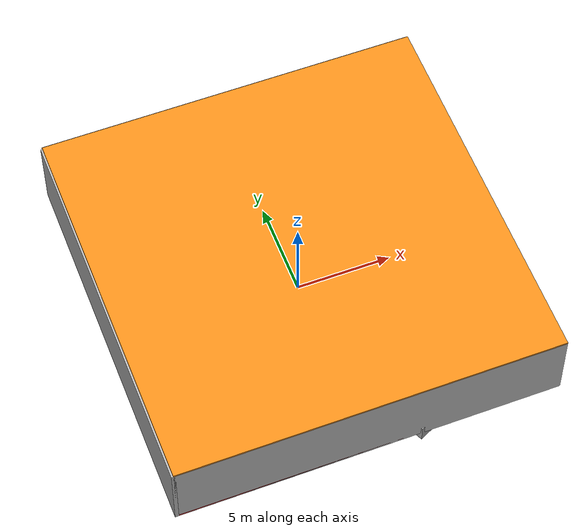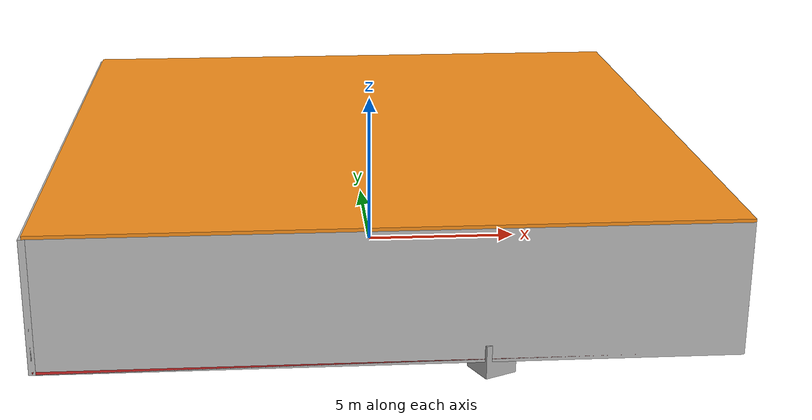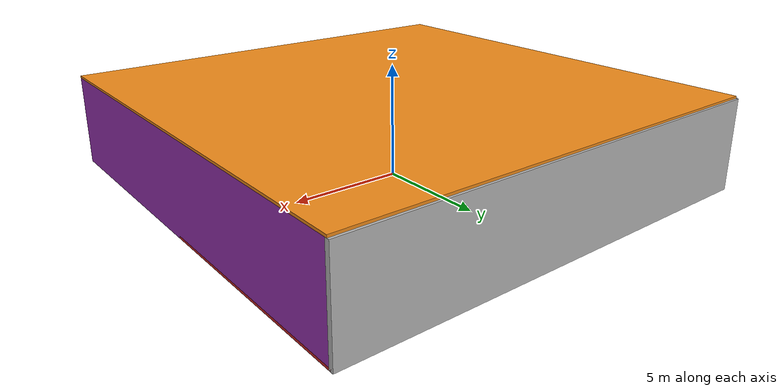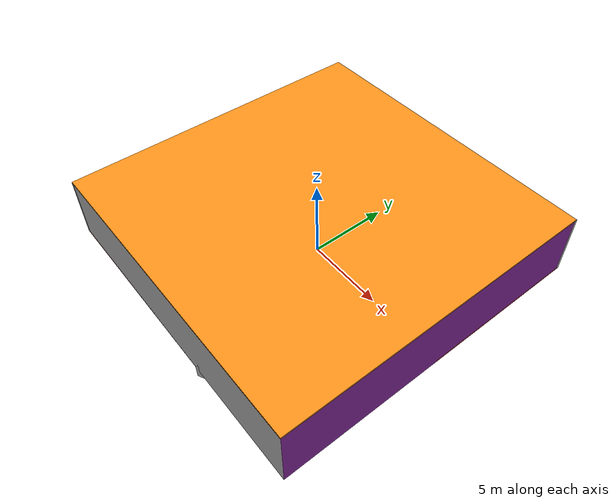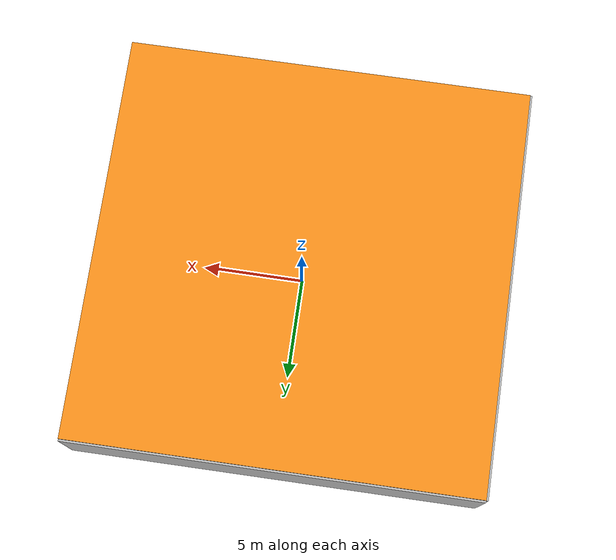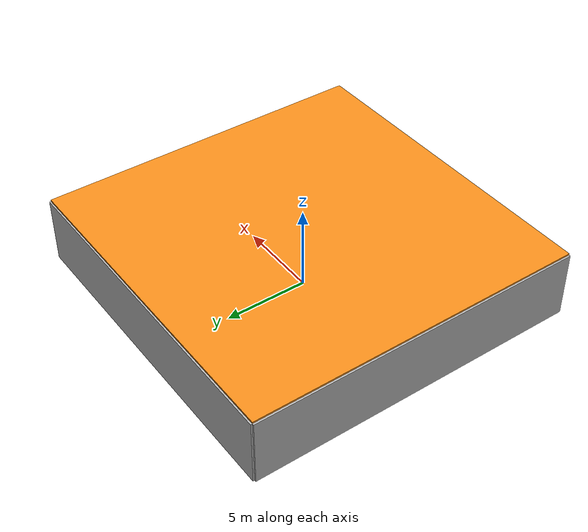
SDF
<sdf version="1.4">
 <world name="default">
  <physics type="ode">
   <max_step_size>0.001</max_step_size>
   <real_time_factor>1</real_time_factor>
   <real_time_update_rate>1000</real_time_update_rate>
   <gravity>0 0 -9.8</gravity>
  </physics>
  <scene><ambient>0.4 0.4 0.4 1</ambient><background>0.7 0.7 0.7 1</background><shadows>1</shadows></scene>
  <model name="Surrounding">
   <static>1</static>
   <link name="Ceiling">
    <collision name="Ceiling_Collision"><geometry><box><size>20 20 0.1</size></box></geometry></collision>
    <visual name="Ceiling_Visual">
     <geometry><box><size>20 20 0.1</size></box></geometry>
     <material>
      <script><uri>file://media/materials/scripts/gazebo.material</uri><name>Gazebo/Orange</name></script>
     </material>
    </visual>
    <pose>0 0 4.05 0 0 0</pose>
   </link>
   <link name="Wall_South">
    <collision name="Wall_South_Collision">
     <geometry><box><size>20 0 4</size></box></geometry>
     <pose>0 0 2 0 -0 0</pose>
    </collision>
    <visual name="Wall_South_Visual">
     <pose>0 0 2 0 -0 0</pose>
     <geometry><box><size>20 0 4</size></box></geometry>
     <material>
      <script><uri>file://media/materials/scripts/gazebo.material</uri><name>Gazebo/Pioneer2Body</name></script>
     </material>
    </visual>
    <velocity_decay><linear>0</linear><angular>0</angular></velocity_decay>
    <pose>0 -10 0 0 -0 0</pose>
   </link>
   <link name="Wall_East">
    <collision name="Wall_21_Collision">
     <geometry><box><size>20 0 4</size></box></geometry>
     <pose>0 0 2 0 -0 0</pose>
    </collision>
    <visual name="Wall_21_Visual">
     <pose>0 0 2 0 -0 0</pose>
     <geometry><box><size>20 0 4</size></box></geometry>
     <material>
      <script><uri>file://media/materials/scripts/gazebo.material</uri><name>Gazebo/Purple</name></script>
     </material>
    </visual>
    <velocity_decay><linear>0</linear><angular>0</angular></velocity_decay>
    <pose>10 0 0 0 -0 1.5708</pose>
   </link>
   <link name="Wall_North">
    <collision name="Wall_22_Collision">
     <geometry><box><size>20 0.2 4</size></box></geometry>
     <pose>0 0 2 0 -0 0</pose>
    </collision>
    <visual name="Wall_22_Visual">
     <pose>0 0 2 0 -0 0</pose>
     <geometry><box><size>20 0.2 4</size></box></geometry>
     <material>
      <script><uri>file://media/materials/scripts/gazebo.material</uri><name>Gazebo/PioneerBody</name></script>
     </material>
    </visual>
    <velocity_decay><linear>0</linear><angular>0</angular></velocity_decay>
    <pose>0 10 0 0 -0 0</pose>
   </link>
   <link name="Wall_West">
    <collision name="Wall_23_Collision">
     <geometry><box><size>20 0.2 4</size></box></geometry>
     <pose>0 0 2 0 -0 0</pose>
    </collision>
    <visual name="Wall_23_Visual">
     <pose>0 0 2 0 -0 0</pose>
     <geometry><box><size>20 0.2 4</size></box></geometry>
     <material>
      <script><uri>file://media/materials/scripts/gazebo.material</uri><name>Gazebo/JointAnchor</name></script>
     </material>
    </visual>
    <velocity_decay><linear>0</linear><angular>0</angular></velocity_decay>
    <pose>-10 0 0 0 0 -1.5708</pose>
   </link>
   <link name="Ground_link">
    <collision name="collision">
     <pose>0 0 .05 0 -0 0</pose>
     <geometry><box><size>20 20 0.1</size></box></geometry>
    </collision>
    <visual name="visual">
     <pose>0 0 .05 0 -0 0</pose>
     <geometry><box><size>20 20 0.1</size></box></geometry>
     <material>
      <script><uri>file://media/materials/scripts/gazebo.material</uri><name>Gazebo/RedGlow</name></script>
     </material>
    </visual>
   </link>
   <static>1</static>
  </model>
  <spherical_coordinates>
   <surface_model>EARTH_WGS84</surface_model>
   <latitude_deg>0</latitude_deg>
   <longitude_deg>0</longitude_deg>
   <elevation>0</elevation>
   <heading_deg>0</heading_deg>
  </spherical_coordinates>
  <light name="lightball_0" type="diffuse">
   <diffuse>0.8 0.8 0.8 1</diffuse>
   <specular>0.2 0.2 0.2 1</specular>
   <attenuation>
    <range>100</range>
    <constant>0.7</constant>
    <linear>0.01</linear>
    <quadratic>0.001</quadratic>
   </attenuation>
   <direction>-0.5 0.1 -0.9</direction>
   <pose>2.9402626712 9.53534186111 1.30081559365 0 0 0</pose>
  </light>
  <light name="lightball_1" type="diffuse">
   <diffuse>0.8 0.8 0.8 1</diffuse>
   <specular>0.2 0.2 0.2 1</specular>
   <attenuation>
    <range>100</range>
    <constant>0.7</constant>
    <linear>0.01</linear>
    <quadratic>0.001</quadratic>
   </attenuation>
   <direction>-0.5 0.1 -0.9</direction>
   <pose>-5.82374350273 -4.50841577881 0.818129888455 0 0 0</pose>
  </light>
  <include>
   <uri>model://robocup_3Dsim_goal</uri>
   <pose>-7.12855886226 -1.16968852994 0 0 0 0.511540079342</pose>
  </include>
  <include><uri>model://cabinet</uri><pose>-4.18497685215 -8.06125404533 0 0 0 0.968698936654</pose></include>
  <include>
   <uri>model://textured_shapes</uri>
   <pose>-2.09314530814 1.19774081581 0 0 0 1.74229251576</pose>
  </include>
  <include><uri>model://table</uri><pose>-1.12990533967 7.40809889307 0 0 0 1.48110526675</pose></include>
  <include>
   <uri>model://textured_shapes</uri>
   <pose>2.21107910913 -8.05321976119 0 0 0 0.435680132757</pose>
  </include>
  <include>
   <uri>model://robocup_3Dsim_goal</uri>
   <pose>1.01043202302 -1.52201526845 0 0 0 2.88952037476</pose>
  </include>
  <include>
   <uri>model://construction_cone</uri>
   <pose>4.04807999931 0.905501902153 0 0 0 1.31464968332</pose>
  </include>
  <include>
   <uri>model://textured_shapes</uri>
   <pose>4.50015424952 7.3765127322 0 0 0 0.201557840684</pose>
  </include>
 </world>
</sdf>

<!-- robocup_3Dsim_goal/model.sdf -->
<sdf version="1.5">
  <model name="robocup_3d_goal">
    <static>true</static>
    <link name="left_post">
      <pose>0 1.05 0.45 0 0 0</pose>
      <collision name="collision">
        <geometry>
          <cylinder>
            <radius>0.05</radius>
            <length>0.9</length>
          </cylinder>
        </geometry>
      </collision>
      <visual name="visual">
        <geometry>
          <cylinder>
            <radius>0.05</radius>
            <length>0.9</length>
          </cylinder>
        </geometry>
        <material>
          <script>
            <uri>file://media/materials/scripts/gazebo.material</uri>
            <name>Gazebo/ZincYellow</name>
          </script>
        </material>
      </visual>
    </link>
    <link name="left_support_horiz_lower">
      <pose>0.30 1.05 0.01 0 0 0</pose>
      <collision name="collision">
        <geometry>
          <box>
            <size>0.50 0.02 0.02</size>
          </box>
        </geometry>
      </collision>
      <visual name="visual">
        <geometry>
          <box>
            <size>0.50 0.02 0.02</size>
          </box>
        </geometry>
        <material>
          <script>
            <uri>file://media/materials/scripts/gazebo.material</uri>
            <name>Gazebo/White</name>
          </script>
        </material>
      </visual>
    </link>
    <link name="left_support_horiz_upper">
      <pose>0.30 1.05 0.79 0 0 0</pose>
      <collision name="collision">
        <geometry>
          <box>
            <size>0.50 0.02 0.02</size>
          </box>
        </geometry>
      </collision>
      <visual name="visual">
        <geometry>
          <box>
            <size>0.50 0.02 0.02</size>
          </box>
        </geometry>
        <material>
          <script>
            <uri>file://media/materials/scripts/gazebo.material</uri>
            <name>Gazebo/White</name>
          </script>
        </material>
      </visual>
    </link>
    <link name="left_support_vertical">
      <pose>0.56 1.05 0.4 0 1.5708 0</pose>
      <collision name="collision">
        <geometry>
          <box>
            <size>0.80 0.02 0.02</size>
          </box>
        </geometry>
      </collision>
      <visual name="visual">
        <geometry>
          <box>
            <size>0.80 0.02 0.02</size>
          </box>
        </geometry>
        <material>
          <script>
            <uri>file://media/materials/scripts/gazebo.material</uri>
            <name>Gazebo/White</name>
          </script>
        </material>
      </visual>
    </link>
    <link name="right_support_horiz_lower">
      <pose>0.30 -1.05 0.01 0 0 0</pose>
      <collision name="collision">
        <geometry>
          <box>
            <size>0.50 0.02 0.02</size>
          </box>
        </geometry>
      </collision>
      <visual name="visual">
        <geometry>
          <box>
            <size>0.50 0.02 0.02</size>
          </box>
        </geometry>
        <material>
          <script>
            <uri>file://media/materials/scripts/gazebo.material</uri>
            <name>Gazebo/White</name>
          </script>
        </material>
      </visual>
    </link>
    <link name="right_support_horiz_upper">
      <pose>0.30 -1.05 0.79 0 0 0</pose>
      <collision name="collision">
        <geometry>
          <box>
            <size>0.50 0.02 0.02</size>
          </box>
        </geometry>
      </collision>
      <visual name="visual">
        <geometry>
          <box>
            <size>0.50 0.02 0.02</size>
          </box>
        </geometry>
        <material>
          <script>
            <uri>file://media/materials/scripts/gazebo.material</uri>
            <name>Gazebo/White</name>
          </script>
        </material>
      </visual>
    </link>
    <link name="right_support_vertical">
      <pose>0.56 -1.05 0.4 0 1.5708 0</pose>
      <collision name="collision">
        <geometry>
          <box>
            <size>0.80 0.02 0.02</size>
          </box>
        </geometry>
      </collision>
      <visual name="visual">
        <geometry>
          <box>
            <size>0.80 0.02 0.02</size>
          </box>
        </geometry>
        <material>
          <script>
            <uri>file://media/materials/scripts/gazebo.material</uri>
            <name>Gazebo/White</name>
          </script>
        </material>
      </visual>
    </link>
    <link name="center_support_horiz_lower">
      <pose>0.56 0 0.01 0 1.5708 0</pose>
      <collision name="collision">
        <geometry>
          <box>
            <size>0.02 2.08 0.02</size>
          </box>
        </geometry>
      </collision>
      <visual name="visual">
        <geometry>
          <box>
            <size>0.02 2.08 0.02</size>
          </box>
        </geometry>
        <material>
          <script>
            <uri>file://media/materials/scripts/gazebo.material</uri>
            <name>Gazebo/White</name>
          </script>
        </material>
      </visual>
    </link>
    <link name="center_support_horiz_upper">
      <pose>0.56 0 0.79 0 1.5708 0</pose>
      <collision name="collision">
        <geometry>
          <box>
            <size>0.02 2.08 0.02</size>
          </box>
        </geometry>
      </collision>
      <visual name="visual">
        <geometry>
          <box>
            <size>0.02 2.08 0.02</size>
          </box>
        </geometry>
        <material>
          <script>
            <uri>file://media/materials/scripts/gazebo.material</uri>
            <name>Gazebo/White</name>
          </script>
        </material>
      </visual>
    </link>
    <link name="right_post">
      <pose>0 -1.05 0.45 0 0 0</pose>
      <collision name="collision">
        <geometry>
          <cylinder>
            <radius>0.05</radius>
            <length>0.9</length>
          </cylinder>
        </geometry>
      </collision>
      <visual name="visual">
        <geometry>
          <cylinder>
            <radius>0.05</radius>
            <length>0.9</length>
          </cylinder>
        </geometry>
        <material>
          <script>
            <uri>file://media/materials/scripts/gazebo.material</uri>
            <name>Gazebo/ZincYellow</name>
          </script>
        </material>
      </visual>
    </link>
    <link name="crossbar">
      <pose>0 0 0.85 1.57 1.57 0</pose>
      <collision name="collision">
        <geometry>
          <cylinder>
            <radius>0.05</radius>
            <length>2.0</length>
          </cylinder>
        </geometry>
      </collision>
      <visual name="visual">
        <geometry>
          <cylinder>
            <radius>0.05</radius>
            <length>2.0</length>
          </cylinder>
        </geometry>
        <material>
          <script>
            <uri>file://media/materials/scripts/gazebo.material</uri>
            <name>Gazebo/ZincYellow</name>
          </script>
        </material>
      </visual>
    </link>
    <link name="center_net">
      <pose>0.56 0 0.40 0 0 0</pose>
      <collision name="collision">
        <geometry>
          <box>
            <size>0.01 2.1 0.80</size>
          </box>
        </geometry>
      </collision>
      <visual name="visual">
        <geometry>
          <box>
            <size>0.01 2.1 0.80</size>
          </box>
        </geometry>
        <material>
          <script>
            <uri>model://../model_source/models/robocup09_spl_field/materials/scripts/</uri>
            <uri>model://../model_source/models/robocup09_spl_field/materials/textures/</uri>
            <name>RoboCup/Net</name>
          </script>
        </material>
      </visual>
    </link>
    <link name="left_net">
      <pose>0.30 1.05 0.40 0 0 0</pose>
      <collision name="collision">
        <geometry>
          <box>
            <size>0.50 0.01 0.76</size>
          </box>
        </geometry>
      </collision>
      <visual name="visual">
        <geometry>
          <box>
            <size>0.50 0.01 0.76</size>
          </box>
        </geometry>
        <material>
          <script>
            <uri>model://../model_source/models/robocup09_spl_field/materials/scripts/</uri>
            <uri>model://../model_source/models/robocup09_spl_field/materials/textures/</uri>
            <name>RoboCup/Net</name>
          </script>
        </material>
      </visual>
    </link>
    <link name="right_net">
      <pose>0.30 -1.05 0.40 0 0 0</pose>
      <collision name="collision">
        <geometry>
          <box>
            <size>0.50 0.01 0.76</size>
          </box>
        </geometry>
      </collision>
      <visual name="visual">
        <geometry>
          <box>
            <size>0.50 0.01 0.76</size>
          </box>
        </geometry>
        <material>
          <script>
            <uri>model://../model_source/models/robocup09_spl_field/materials/scripts/</uri>
            <uri>model://../model_source/models/robocup09_spl_field/materials/textures/</uri>
            <name>RoboCup/Net</name>
          </script>
        </material>
      </visual>
    </link>
  </model>
</sdf>

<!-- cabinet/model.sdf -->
<sdf version="1.5">
  <model name="cabinet">
    <static>true</static>
    <link name="cabinet_bottom_plate">
      <inertial>
        <pose>0 0 -1 0 0 0</pose>
        <inertia>
          <ixx>2.050000</ixx>
          <ixy>0</ixy>
          <ixz>0</ixz>
          <iyy>2.050000</iyy>
          <iyz>0</iyz>
          <izz>2.050000</izz>
        </inertia>
        <mass>25.000000</mass>
      </inertial>
      <collision name="cabinet_bottom_plate_geom">
        <pose>0 0 0.010000 0 0 0</pose>
        <geometry>
          <box>
            <size>0.450000 0.450000 0.020000</size>
          </box>
        </geometry>
      </collision>
      <visual name="cabinet_bottom_plate_geom_visual">
        <pose>0 0 0.010000 0 0 0</pose>
        <geometry>
          <box>
            <size>0.450000 0.450000 0.020000</size>
          </box>
        </geometry>
        <material>
          <script>
            <uri>model://media/materials/scripts/gazebo.material</uri>
            <name>Gazebo/Wood</name>
          </script>
        </material>
      </visual>
      <collision name="cabinet_bottom_plate_geom_cabinet_back_plate">
        <pose>0.235000 0 0.510000 0 0 0</pose>
        <geometry>
          <box>
            <size>0.020000 0.450000 1.020000</size>
          </box>
        </geometry>
      </collision>
      <visual name="cabinet_bottom_plate_geom_cabinet_back_plate_visual">
        <pose>0.235000 0 0.510000 0 0 0</pose>
        <geometry>
          <box>
            <size>0.020000 0.450000 1.020000</size>
          </box>
        </geometry>
        <material>
          <script>
            <uri>model://media/materials/scripts/gazebo.material</uri>
            <name>Gazebo/Wood</name>
          </script>
        </material>
      </visual>
      <collision name="cabinet_bottom_plate_geom_cabinet_left_plate">
        <pose>0 0.235000 0.510000 0 0 0</pose>
        <geometry>
          <box>
            <size>0.450000 0.020000 1.020000</size>
          </box>
        </geometry>
      </collision>
      <visual name="cabinet_bottom_plate_geom_cabinet_left_plate_visual">
        <pose>0 0.235000 0.510000 0 0 0</pose>
        <geometry>
          <box>
            <size>0.450000 0.020000 1.020000</size>
          </box>
        </geometry>
        <material>
          <script>
            <uri>model://media/materials/scripts/gazebo.material</uri>
            <name>Gazebo/Wood</name>
          </script>
        </material>
      </visual>
      <collision name="cabinet_bottom_plate_geom_cabinet_middle_plate">
        <pose>0 0 0.510000 0 0 0</pose>
        <geometry>
          <box>
            <size>0.450000 0.450000 0.020000</size>
          </box>
        </geometry>
      </collision>
      <visual name="cabinet_bottom_plate_geom_cabinet_middle_plate_visual">
        <pose>0 0 0.510000 0 0 0</pose>
        <geometry>
          <box>
            <size>0.450000 0.450000 0.020000</size>
          </box>
        </geometry>
        <material>
          <script>
            <uri>model://media/materials/scripts/gazebo.material</uri>
            <name>Gazebo/Wood</name>
          </script>
        </material>
      </visual>
      <collision name="cabinet_bottom_plate_geom_cabinet_right_plate">
        <pose>0 -0.235000 0.510000 0 0 0</pose>
        <geometry>
          <box>
            <size>0.450000 0.020000 1.020000</size>
          </box>
        </geometry>
      </collision>
      <visual name="cabinet_bottom_plate_geom_cabinet_right_plate_visual">
        <pose>0 -0.235000 0.510000 0 0 0</pose>
        <geometry>
          <box>
            <size>0.450000 0.020000 1.020000</size>
          </box>
        </geometry>
        <material>
          <script>
            <uri>model://media/materials/scripts/gazebo.material</uri>
            <name>Gazebo/Wood</name>
          </script>
        </material>
      </visual>
      <collision name="cabinet_bottom_plate_geom_cabinet_top_plate">
        <pose>0 0 1.010000 0 0 0</pose>
        <geometry>
          <box>
            <size>0.450000 0.450000 0.020000</size>
          </box>
        </geometry>
      </collision>
      <visual name="cabinet_bottom_plate_geom_cabinet_top_plate_visual">
        <pose>0 0 1.010000 0 0 0</pose>
        <geometry>
          <box>
            <size>0.450000 0.450000 0.020000</size>
          </box>
        </geometry>
        <material>
          <script>
            <uri>model://media/materials/scripts/gazebo.material</uri>
            <name>Gazebo/Wood</name>
          </script>
        </material>
      </visual>
    </link>
  </model>
</sdf>

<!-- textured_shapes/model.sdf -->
<sdf version="1.6">
  <model name="textured_shapes">
    <pose>0 0 0.5 0 0 0</pose>
    <link name="box">
      <pose>0 -1.5 0 0 0 0</pose>
      <collision name="collision">
        <geometry>
          <box>
            <size>1 1 1</size>
          </box>
        </geometry>
      </collision>
      <visual name="visual">
        <geometry>
          <box>
            <size>1 1 1</size>
          </box>
        </geometry>
        <material>
          <script>
            <uri>model://../model_source/models/textured_shapes/materials/scripts</uri>
            <uri>model://../model_source/models/textured_shapes/materials/textures</uri>
            <name>TexturedShape/Squares</name>
          </script>
        </material>
      </visual>
    </link>
    <link name="sphere">
      <collision name="collision">
        <geometry>
          <sphere>
            <radius>0.5</radius>
          </sphere>
        </geometry>
      </collision>
      <visual name="visual">
        <geometry>
          <sphere>
            <radius>0.5</radius>
          </sphere>
        </geometry>
        <material>
          <script>
            <uri>model://../model_source/models/textured_shapes/materials/scripts</uri>
            <uri>model://../model_source/models/textured_shapes/materials/textures</uri>
            <name>TexturedShape/Squares</name>
          </script>
        </material>
      </visual>
    </link>
    <link name="cylinder">
      <pose>0 1.5 0 0 0 0</pose>
      <collision name="collision">
        <geometry>
          <cylinder>
            <radius>0.5</radius>
            <length>1</length>
          </cylinder>
        </geometry>
      </collision>
      <visual name="visual">
        <geometry>
          <cylinder>
            <radius>0.5</radius>
            <length>1</length>
          </cylinder>
        </geometry>
        <material>
          <script>
            <uri>model://../model_source/models/textured_shapes/materials/scripts</uri>
            <uri>model://../model_source/models/textured_shapes/materials/textures</uri>
            <name>TexturedShape/Squares</name>
          </script>
        </material>
      </visual>
    </link>
  </model>
</sdf>

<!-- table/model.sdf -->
<sdf version="1.5">
  <model name="table">
    <static>true</static>
    <link name="link">
      <collision name="surface">
        <pose>0 0 1.0 0 0 0</pose>
        <geometry>
          <box>
            <size>1.5 0.8 0.03</size>
          </box>
        </geometry>
        <surface>
          <friction>
            <ode>
              <mu>0.6</mu>
              <mu2>0.6</mu2>
            </ode>
          </friction>
        </surface>
      </collision>
      <visual name="visual1">
        <pose>0 0 1.0 0 0 0</pose>
        <geometry>
          <box>
            <size>1.5 0.8 0.03</size>
          </box>
        </geometry>
        <material>
          <script>
            <uri>model://media/materials/scripts/gazebo.material</uri>
            <name>Gazebo/Wood</name>
          </script>
        </material>
      </visual>
      <collision name="front_left_leg">
        <pose>0.68 0.38 0.5 0 0 0</pose>
        <geometry>
          <cylinder>
            <radius>0.02</radius>
            <length>1.0</length>
          </cylinder>
        </geometry>
      </collision>
      <visual name="front_left_leg">
        <pose>0.68 0.38 0.5 0 0 0</pose>
        <geometry>
          <cylinder>
            <radius>0.02</radius>
            <length>1.0</length>
          </cylinder>
        </geometry>
        <material>
          <script>
            <uri>model://media/materials/scripts/gazebo.material</uri>
            <name>Gazebo/Grey</name>
          </script>
        </material>
      </visual>
      <collision name="front_right_leg">
        <pose>0.68 -0.38 0.5 0 0 0</pose>
        <geometry>
          <cylinder>
            <radius>0.02</radius>
            <length>1.0</length>
          </cylinder>
        </geometry>
      </collision>
      <visual name="front_right_leg">
        <pose>0.68 -0.38 0.5 0 0 0</pose>
        <geometry>
          <cylinder>
            <radius>0.02</radius>
            <length>1.0</length>
          </cylinder>
        </geometry>
        <material>
          <script>
            <uri>model://media/materials/scripts/gazebo.material</uri>
            <name>Gazebo/Grey</name>
          </script>
        </material>
      </visual>
      <collision name="back_right_leg">
        <pose>-0.68 -0.38 0.5 0 0 0</pose>
        <geometry>
          <cylinder>
            <radius>0.02</radius>
            <length>1.0</length>
          </cylinder>
        </geometry>
      </collision>
      <visual name="back_right_leg">
        <pose>-0.68 -0.38 0.5 0 0 0</pose>
        <geometry>
          <cylinder>
            <radius>0.02</radius>
            <length>1.0</length>
          </cylinder>
        </geometry>
        <material>
          <script>
            <uri>model://media/materials/scripts/gazebo.material</uri>
            <name>Gazebo/Grey</name>
          </script>
        </material>
      </visual>
      <collision name="back_left_leg">
        <pose>-0.68 0.38 0.5 0 0 0</pose>
        <geometry>
          <cylinder>
            <radius>0.02</radius>
            <length>1.0</length>
          </cylinder>
        </geometry>
      </collision>
      <visual name="back_left_leg">
        <pose>-0.68 0.38 0.5 0 0 0</pose>
        <geometry>
          <cylinder>
            <radius>0.02</radius>
            <length>1.0</length>
          </cylinder>
        </geometry>
        <material>
          <script>
            <uri>model://media/materials/scripts/gazebo.material</uri>
            <name>Gazebo/Grey</name>
          </script>
        </material>
      </visual>
    </link>
  </model>
</sdf>

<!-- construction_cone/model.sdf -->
<sdf version="1.5">
  <model name="Construction Cone">
    <link name="link">
      <collision name="collision">
        <geometry>
          <mesh>
            <scale>10 10 10</scale>
            <uri>file://isr-testbed/construction_cone/meshes/construction_cone.dae</uri>
          </mesh>
        </geometry>
      </collision>
      <visual name="visual">
        <geometry>
          <mesh>
            <scale>10 10 10</scale>
            <uri>file://isr-testbed/construction_cone/meshes/construction_cone.dae</uri>
          </mesh>
        </geometry>
      </visual>
    </link>
  </model>
</sdf>
